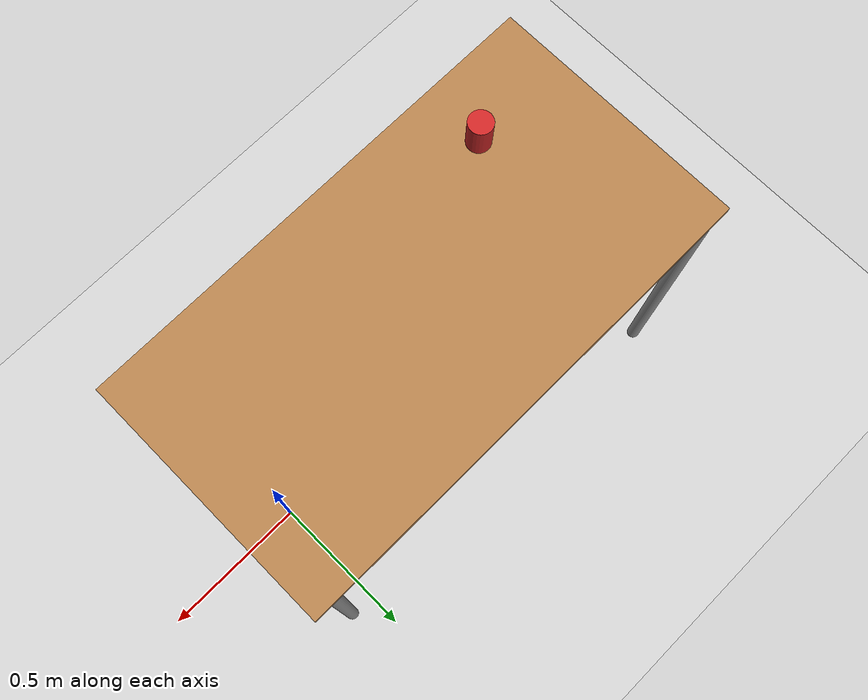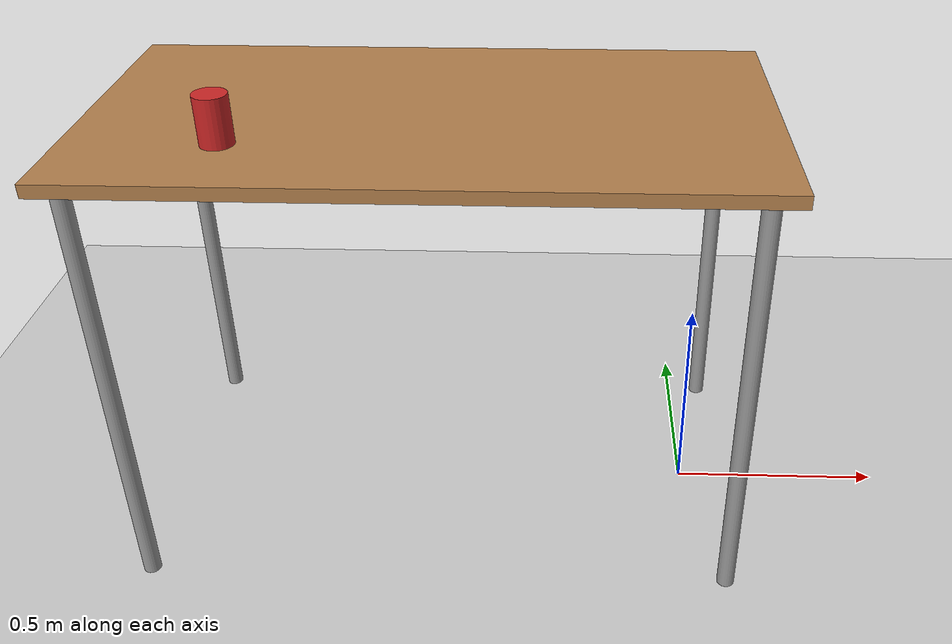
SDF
<sdf version="1.6">
 <world name="custom">
  <model name="ground_plane">
   <static>1</static>
   <link name="link">
    <collision name="collision">
     <geometry><plane><normal>0 0 1</normal><size>100 100</size></plane></geometry>
     <surface>
      <contact><collide_bitmask>65535</collide_bitmask></contact>
      <friction><ode><mu>100</mu><mu2>50</mu2></ode></friction>
     </surface>
    </collision>
    <visual name="visual">
     <cast_shadows>0</cast_shadows>
     <geometry><plane><normal>0 0 1</normal><size>100 100</size></plane></geometry>
     <material>
      <script><uri>file://media/materials/scripts/gazebo.material</uri><name>Gazebo/Grey</name></script>
     </material>
    </visual>
   </link>
  </model>
  <light name="sun" type="directional">
   <pose>0 0 10 0 -0 0</pose>
   <diffuse>0.8 0.8 0.8 1</diffuse>
   <specular>0.2 0.2 0.2 1</specular>
   <attenuation>
    <range>1000</range>
    <constant>0.9</constant>
    <linear>0.01</linear>
    <quadratic>0.001</quadratic>
   </attenuation>
   <direction>-0.5 0.1 -0.9</direction>
  </light>
  <model name="Table">
   <static>1</static>
   <link name="link">
    <collision name="surface">
     <pose>0 0 1 0 -0 0</pose>
     <geometry><box><size>1.5 0.8 0.03</size></box></geometry>
     <surface><friction><ode><mu>0.6</mu><mu2>0.6</mu2></ode></friction></surface>
    </collision>
    <visual name="visual1">
     <pose>0 0 1 0 -0 0</pose>
     <geometry><box><size>1.5 0.8 0.03</size></box></geometry>
     <material>
      <script><uri>file://media/materials/scripts/gazebo.material</uri><name>Gazebo/Wood</name></script>
     </material>
    </visual>
    <collision name="front_left_leg">
     <pose>0.68 0.38 0.5 0 -0 0</pose>
     <geometry><cylinder><radius>0.02</radius><length>1</length></cylinder></geometry>
    </collision>
    <visual name="front_left_leg">
     <pose>0.68 0.38 0.5 0 -0 0</pose>
     <geometry><cylinder><radius>0.02</radius><length>1</length></cylinder></geometry>
     <material>
      <script><uri>file://media/materials/scripts/gazebo.material</uri><name>Gazebo/Grey</name></script>
     </material>
    </visual>
    <collision name="front_right_leg">
     <pose>0.68 -0.38 0.5 0 -0 0</pose>
     <geometry><cylinder><radius>0.02</radius><length>1</length></cylinder></geometry>
    </collision>
    <visual name="front_right_leg">
     <pose>0.68 -0.38 0.5 0 -0 0</pose>
     <geometry><cylinder><radius>0.02</radius><length>1</length></cylinder></geometry>
     <material>
      <script><uri>file://media/materials/scripts/gazebo.material</uri><name>Gazebo/Grey</name></script>
     </material>
    </visual>
    <collision name="back_right_leg">
     <pose>-0.68 -0.38 0.5 0 -0 0</pose>
     <geometry><cylinder><radius>0.02</radius><length>1</length></cylinder></geometry>
    </collision>
    <visual name="back_right_leg">
     <pose>-0.68 -0.38 0.5 0 -0 0</pose>
     <geometry><cylinder><radius>0.02</radius><length>1</length></cylinder></geometry>
     <material>
      <script><uri>file://media/materials/scripts/gazebo.material</uri><name>Gazebo/Grey</name></script>
     </material>
    </visual>
    <collision name="back_left_leg">
     <pose>-0.68 0.38 0.5 0 -0 0</pose>
     <geometry><cylinder><radius>0.02</radius><length>1</length></cylinder></geometry>
    </collision>
    <visual name="back_left_leg">
     <pose>-0.68 0.38 0.5 0 -0 0</pose>
     <geometry><cylinder><radius>0.02</radius><length>1</length></cylinder></geometry>
     <material>
      <script><uri>file://media/materials/scripts/gazebo.material</uri><name>Gazebo/Grey</name></script>
     </material>
    </visual>
   </link>
   <pose>-0.6 0 0 0 -0 0</pose>
  </model>
  <model name="cyl_can">
   <pose>-1.02 -0.19999 1.069 -0.000181 7.6e-05 -5e-06</pose>
   <static>0</static>
   <link name="link">
    <collision name="collision">
     <geometry><cylinder><length>0.108</length><radius>0.0365</radius></cylinder></geometry>
     <surface><friction><ode><mu>100</mu><mu2>50</mu2></ode></friction></surface>
    </collision>
    <visual name="visual">
     <geometry><cylinder><length>0.108</length><radius>0.0365</radius></cylinder></geometry>
     <material>
      <script><uri>file://media/materials/scripts/gazebo.material</uri><name>Gazebo/Red</name></script>
     </material>
    </visual>
    <inertial>
     <inertia><ixx>1</ixx><ixy>0</ixy><ixz>0</ixz><iyy>1</iyy><iyz>0</iyz><izz>1</izz></inertia>
     <mass>1</mass>
    </inertial>
   </link>
  </model>
  <model name="cyl_can">
   <pose>-1.02 -0.19999 1.069 -0.000181 7.6e-05 -5e-06</pose>
   <static>0</static>
   <link name="link">
    <collision name="collision">
     <geometry><cylinder><length>0.108</length><radius>0.0365</radius></cylinder></geometry>
     <surface><friction><ode><mu>100</mu><mu2>50</mu2></ode></friction></surface>
    </collision>
    <visual name="visual">
     <geometry><cylinder><length>0.108</length><radius>0.0365</radius></cylinder></geometry>
     <material>
      <script><uri>file://media/materials/scripts/gazebo.material</uri><name>Gazebo/Red</name></script>
     </material>
    </visual>
    <inertial>
     <inertia><ixx>1</ixx><ixy>0</ixy><ixz>0</ixz><iyy>1</iyy><iyz>0</iyz><izz>1</izz></inertia>
     <mass>1</mass>
    </inertial>
   </link>
  </model>
  <model name="cyl_can">
   <pose>-1.02 -0.19999 1.069 -0.000181 7.6e-05 -5e-06</pose>
   <static>0</static>
   <link name="link">
    <collision name="collision">
     <geometry><cylinder><length>0.108</length><radius>0.0365</radius></cylinder></geometry>
     <surface><friction><ode><mu>100</mu><mu2>50</mu2></ode></friction></surface>
    </collision>
    <visual name="visual">
     <geometry><cylinder><length>0.108</length><radius>0.0365</radius></cylinder></geometry>
     <material>
      <script><uri>file://media/materials/scripts/gazebo.material</uri><name>Gazebo/Red</name></script>
     </material>
    </visual>
    <inertial>
     <inertia><ixx>1</ixx><ixy>0</ixy><ixz>0</ixz><iyy>1</iyy><iyz>0</iyz><izz>1</izz></inertia>
     <mass>1</mass>
    </inertial>
   </link>
  </model>
  <gravity>0 0 -9.8</gravity>
  <magnetic_field>6e-06 2.3e-05 -4.2e-05</magnetic_field>
  <atmosphere type="adiabatic"/>
  <physics name="default_physics" default="0" type="ode">
   <max_step_size>0.001</max_step_size>
   <real_time_factor>1</real_time_factor>
   <real_time_update_rate>1000</real_time_update_rate>
  </physics>
  <scene><ambient>0.4 0.4 0.4 1</ambient><background>0.7 0.7 0.7 1</background><shadows>1</shadows></scene>
  <audio><device>default</device></audio>
  <spherical_coordinates>
   <surface_model>EARTH_WGS84</surface_model>
   <latitude_deg>0</latitude_deg>
   <longitude_deg>0</longitude_deg>
   <elevation>0</elevation>
   <heading_deg>0</heading_deg>
  </spherical_coordinates>
 </world>
</sdf>
